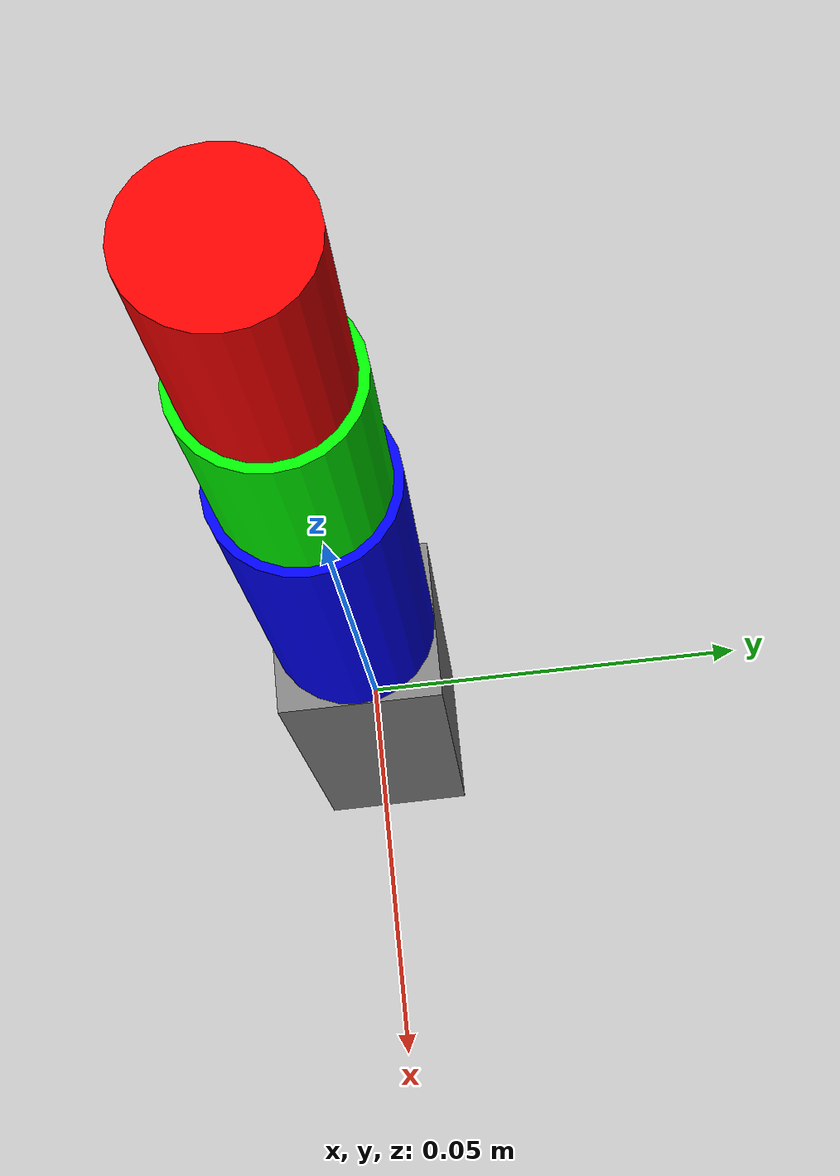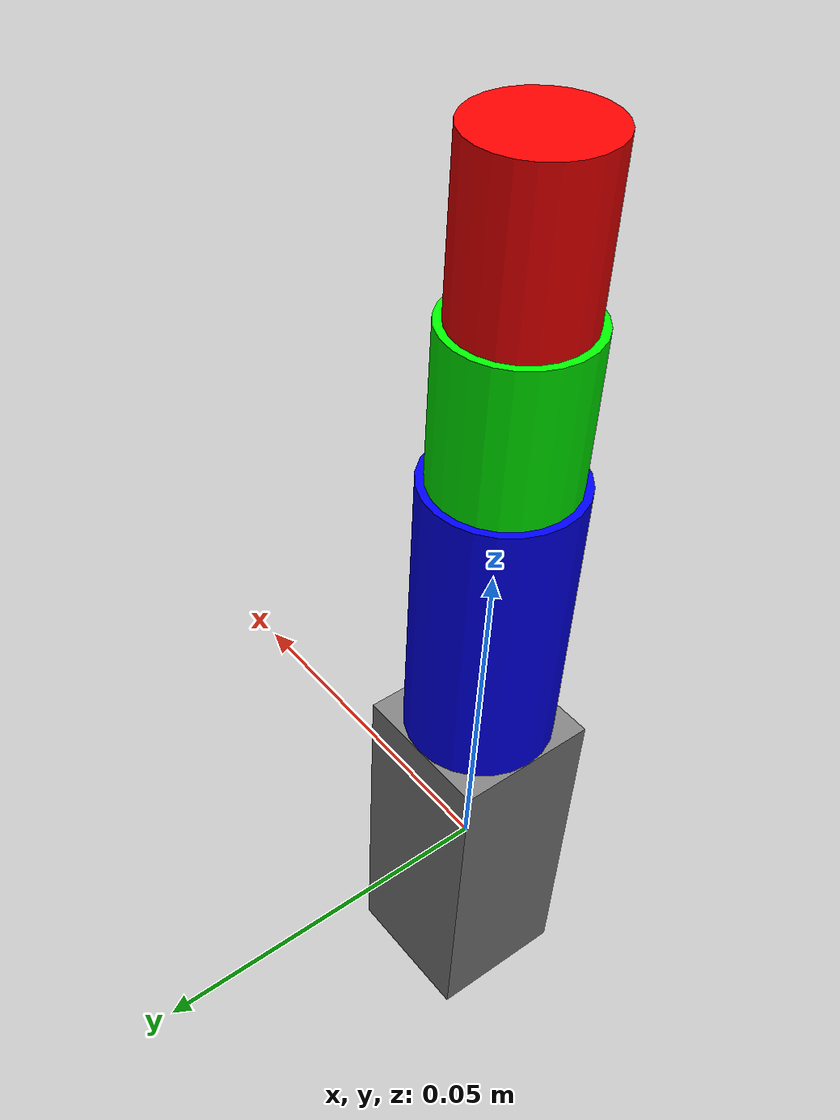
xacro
<?xml version="1.0"?>
<robot name="test_finger">

  <material name="blue">
    <color rgba="0 0 1 1"/>
  </material>
  <material name="green">
    <color rgba="0 1 0 1"/>
  </material>
  <material name="red">
    <color rgba="1 0 0 1"/>
  </material>
  <material name="purple">
    <color rgba="1 0 1 1"/>
  </material>
  <material name="grey">
    <color rgba="0.5 0.5 0.5 1"/>
  </material>
  <material name="yellow">
    <color rgba="1 1 0 1"/>
  </material>

  <!-- Finger base-->
  <link name="base_link">
    <visual>
      <geometry>
        <box size="0.02 0.02 0.05"/>
      </geometry>
      <origin xyz="0 0 0" rpy="0 0 0"/>
      <material name="grey"/>
    </visual>
    <inertial>
      <mass value="0.01"/>
      <origin xyz="0 0 0" rpy="0 0 0"/>
      <inertia ixx="1e-5" ixy="0" ixz="0" iyy="1e-5" iyz="0" izz="1e-5"/>
    </inertial>
  </link>

  <!-- MCP splay joint -->
  <joint name="mcp_splay" type="revolute">
    <parent link="base_link"/>
    <child link="mcp_link"/>
    <origin xyz="0 0 0.0025" rpy="0 0 0"/>
    <axis xyz="0 1 0"/>
    <limit lower="-0.2" upper="0.2" effort="1.0" velocity="1.0"/>
  </joint>

  <!-- Space between MCP splay and flexion -->
  <link name="mcp_link">
    <visual>
      <geometry>
        <cylinder length="0.005" radius="0.01"/>
      </geometry>
      <origin xyz="0 0 0.02" rpy="0 0 0"/>
      <material name="purple"/>
    </visual>
    <inertial>
      <mass value="0.01"/>
      <origin xyz="0 0 0.02"/>
      <inertia ixx="1e-5" ixy="0" ixz="0" iyy="1e-5" iyz="0" izz="1e-5"/>
    </inertial>
  </link>

  <!-- MCP flexion joint -->
  <joint name="mcp_flexion" type="revolute">
    <parent link="mcp_link"/>
    <child link="proximal_phalanx"/>
    <origin xyz="0 0 0.0225" rpy="0 0 0"/>
    <axis xyz="1 0 0"/>
    <limit lower="0" upper="1.5" effort="1.0" velocity="1.0"/>
  </joint>

  <!-- Proximal phalanx -->
  <link name="proximal_phalanx">
    <visual>
      <geometry>
        <cylinder length="0.04" radius="0.01"/>
      </geometry>
      <origin xyz="0 0 0.02" rpy="0 0 0"/>
      <material name="blue"/>
    </visual>
    <inertial>
      <mass value="0.01"/>
      <origin xyz="0 0 0.02"/>
      <inertia ixx="1e-5" ixy="0" ixz="0" iyy="1e-5" iyz="0" izz="1e-5"/>
    </inertial>
  </link>

  <!-- PIP joint -->
  <joint name="pip_flexion" type="revolute">
    <parent link="proximal_phalanx"/>
    <child link="middle_phalanx"/>
    <origin xyz="0 0 0.03" rpy="0 0 0"/>
    <axis xyz="1 0 0"/>
    <limit lower="0" upper="1.2" effort="1.0" velocity="1.0"/>
  </joint>

  <!-- Middle phalanx -->
  <link name="middle_phalanx">
    <visual>
      <geometry>
        <cylinder length="0.03" radius="0.009"/>
      </geometry>
      <origin xyz="0 0 0.015"/>
      <material name="green"/>
    </visual>
    <inertial>
      <mass value="0.008"/>
      <origin xyz="0 0 0.015"/>
      <inertia ixx="5e-6" ixy="0" ixz="0" iyy="5e-6" iyz="0" izz="5e-6"/>
    </inertial>
  </link>

  <!-- DIP joint -->
  <joint name="dip_flexion" type="revolute">
    <parent link="middle_phalanx"/>
    <child link="distal_phalanx"/>
    <origin xyz="0 0 0.03" rpy="0 0 0"/>
    <axis xyz="1 0 0"/>
    <limit lower="0" upper="1.2" effort="1.0" velocity="1.0"/>
  </joint>

  <!-- Distal phalanx -->
  <link name="distal_phalanx">
    <visual>
      <geometry>
        <cylinder length="0.02" radius="0.008"/>
      </geometry>
      <origin xyz="0 0 0.01"/>
      <material name="red"/>
    </visual>
    <inertial>
      <mass value="0.005"/>
      <origin xyz="0 0 0.01"/>
      <inertia ixx="2e-6" ixy="0" ixz="0" iyy="2e-6" iyz="0" izz="2e-6"/>
    </inertial>
  </link>

</robot>
